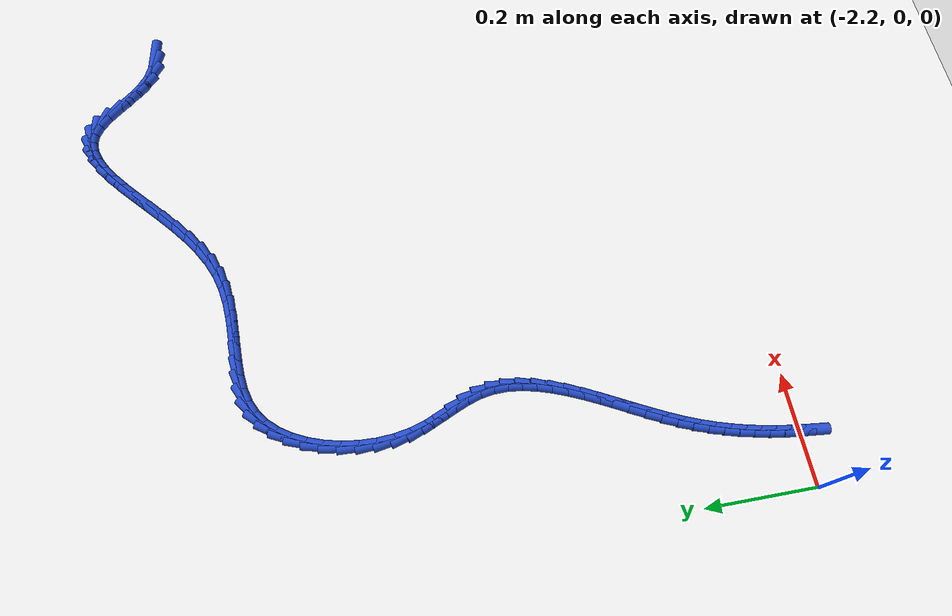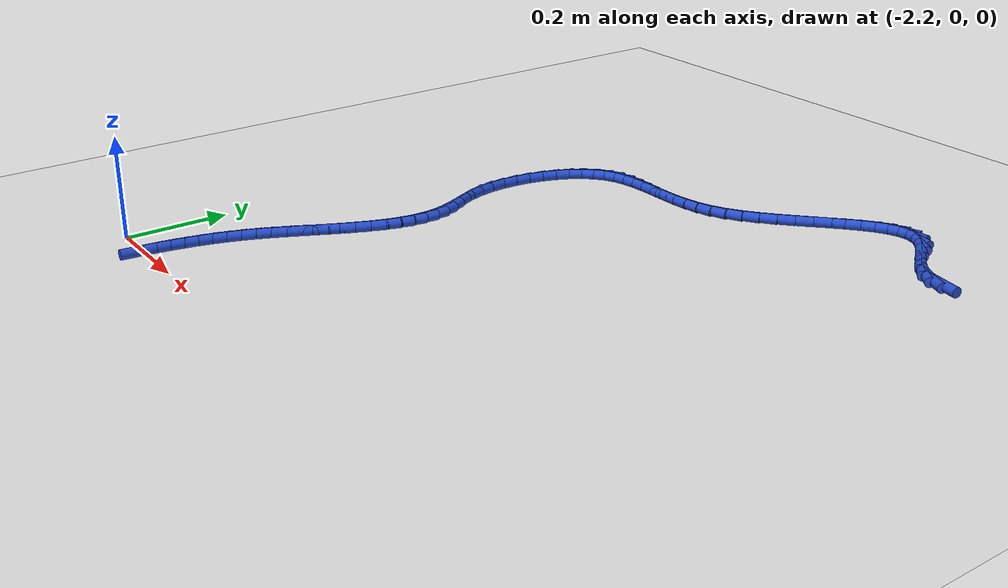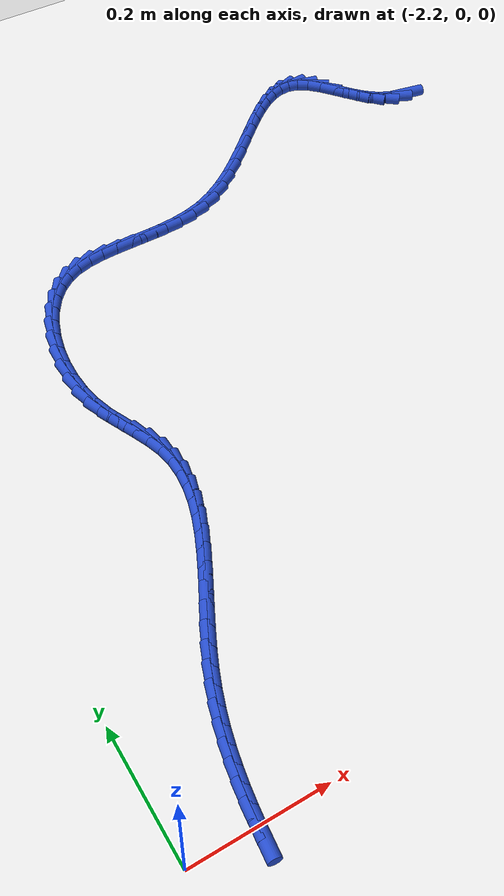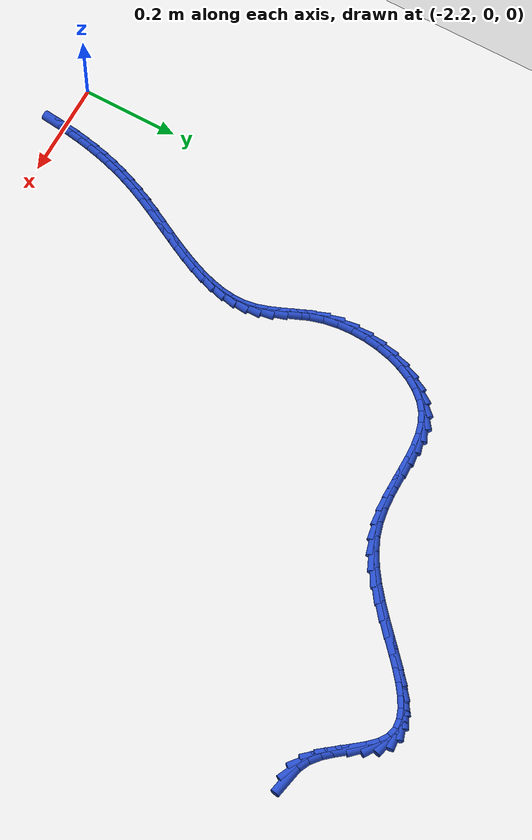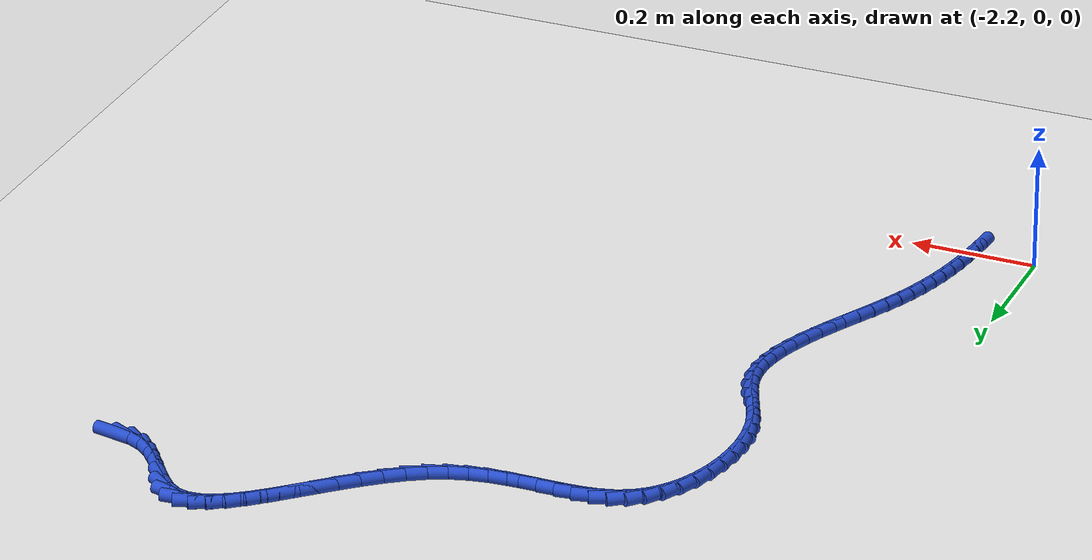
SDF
<sdf version="1.6">
 <world name="default">
  <model name="ground_plane">
   <static>1</static>
   <link name="link">
    <collision name="collision">
     <geometry><plane><normal>0 0 1</normal><size>100 100</size></plane></geometry>
     <surface><friction><ode><mu>100</mu><mu2>50</mu2></ode></friction></surface>
    </collision>
    <visual name="visual">
     <cast_shadows>0</cast_shadows>
     <geometry><plane><normal>0 0 1</normal><size>100 100</size></plane></geometry>
     <material>
      <script><uri>file://media/materials/scripts/gazebo.material</uri><name>Gazebo/WhiteGlow</name></script>
     </material>
    </visual>
   </link>
  </model>
  <model name="line">
   <link name="link_65">
    <pose>-1.1472537132720921 1.0437075421269983 0.01 0 1.57 -0.1908297829703688</pose>
    <collision name="collision">
     <geometry><cylinder><radius>0.01</radius><length>0.08</length></cylinder></geometry>
    </collision>
    <visual name="visual">
     <material>
      <script><name>Gazebo/Blue</name><uri>file://media/materials/scripts/gazebo.material</uri></script>
     </material>
     <geometry><cylinder><radius>0.01</radius><length>0.08</length></cylinder></geometry>
    </visual>
   </link>
   <link name="link_66">
    <pose>-1.1709579289009193 1.048286733149616 0.01 0 1.57 -0.4315236645023768</pose>
    <collision name="collision">
     <geometry><cylinder><radius>0.01</radius><length>0.08</length></cylinder></geometry>
    </collision>
    <visual name="visual">
     <material>
      <script><name>Gazebo/Blue</name><uri>file://media/materials/scripts/gazebo.material</uri></script>
     </material>
     <geometry><cylinder><radius>0.01</radius><length>0.08</length></cylinder></geometry>
    </visual>
   </link>
   <link name="link_67">
    <pose>-1.193125170385603 1.0584940042814004 0.01 0 1.57 -0.6776256047833608</pose>
    <collision name="collision">
     <geometry><cylinder><radius>0.01</radius><length>0.08</length></cylinder></geometry>
    </collision>
    <visual name="visual">
     <material>
      <script><name>Gazebo/Blue</name><uri>file://media/materials/scripts/gazebo.material</uri></script>
     </material>
     <geometry><cylinder><radius>0.01</radius><length>0.08</length></cylinder></geometry>
    </visual>
   </link>
   <link name="link_68">
    <pose>-1.213614786763767 1.0749828550991414 0.01 0 1.57 -0.8388271453179427</pose>
    <collision name="collision">
     <geometry><cylinder><radius>0.01</radius><length>0.08</length></cylinder></geometry>
    </collision>
    <visual name="visual">
     <material>
      <script><name>Gazebo/Blue</name><uri>file://media/materials/scripts/gazebo.material</uri></script>
     </material>
     <geometry><cylinder><radius>0.01</radius><length>0.08</length></cylinder></geometry>
    </visual>
   </link>
   <link name="link_69">
    <pose>-1.2326859800498944 1.0962091534207812 0.01 0 1.57 -0.9049081927433106</pose>
    <collision name="collision">
     <geometry><cylinder><radius>0.01</radius><length>0.08</length></cylinder></geometry>
    </collision>
    <visual name="visual">
     <material>
      <script><name>Gazebo/Blue</name><uri>file://media/materials/scripts/gazebo.material</uri></script>
     </material>
     <geometry><cylinder><radius>0.01</radius><length>0.08</length></cylinder></geometry>
    </visual>
   </link>
   <link name="link_70">
    <pose>-1.2508370928147665 1.1193144267647905 0.01 0 1.57 -0.8947844522712578</pose>
    <collision name="collision">
     <geometry><cylinder><radius>0.01</radius><length>0.08</length></cylinder></geometry>
    </collision>
    <visual name="visual">
     <material>
      <script><name>Gazebo/Blue</name><uri>file://media/materials/scripts/gazebo.material</uri></script>
     </material>
     <geometry><cylinder><radius>0.01</radius><length>0.08</length></cylinder></geometry>
    </visual>
   </link>
   <link name="link_71">
    <pose>-1.2685696867738616 1.1414225099099846 0.01 0 1.57 -0.7970227886524505</pose>
    <collision name="collision">
     <geometry><cylinder><radius>0.01</radius><length>0.08</length></cylinder></geometry>
    </collision>
    <visual name="visual">
     <material>
      <script><name>Gazebo/Blue</name><uri>file://media/materials/scripts/gazebo.material</uri></script>
     </material>
     <geometry><cylinder><radius>0.01</radius><length>0.08</length></cylinder></geometry>
    </visual>
   </link>
   <link name="link_72">
    <pose>-1.286385323642658 1.1596572376351786 0.01 0 1.57 -0.5652407297171366</pose>
    <collision name="collision">
     <geometry><cylinder><radius>0.01</radius><length>0.08</length></cylinder></geometry>
    </collision>
    <visual name="visual">
     <material>
      <script><name>Gazebo/Blue</name><uri>file://media/materials/scripts/gazebo.material</uri></script>
     </material>
     <geometry><cylinder><radius>0.01</radius><length>0.08</length></cylinder></geometry>
    </visual>
   </link>
   <link name="link_73">
    <pose>-1.3047621979662785 1.1713132176513337 0.01 0 1.57 -0.2298564299106198</pose>
    <collision name="collision">
     <geometry><cylinder><radius>0.01</radius><length>0.08</length></cylinder></geometry>
    </collision>
    <visual name="visual">
     <material>
      <script><name>Gazebo/Blue</name><uri>file://media/materials/scripts/gazebo.material</uri></script>
     </material>
     <geometry><cylinder><radius>0.01</radius><length>0.08</length></cylinder></geometry>
    </visual>
   </link>
   <link name="link_74">
    <pose>-1.3238906029905462 1.1757891099917746 0.01 0 1.57 0.09477472024817211</pose>
    <collision name="collision">
     <geometry><cylinder><radius>0.01</radius><length>0.08</length></cylinder></geometry>
    </collision>
    <visual name="visual">
     <material>
      <script><name>Gazebo/Blue</name><uri>file://media/materials/scripts/gazebo.material</uri></script>
     </material>
     <geometry><cylinder><radius>0.01</radius><length>0.08</length></cylinder></geometry>
    </visual>
   </link>
   <link name="link_75">
    <pose>-1.3437670659965997 1.173899663220778 0.01 0 1.57 0.3451853252124385</pose>
    <collision name="collision">
     <geometry><cylinder><radius>0.01</radius><length>0.08</length></cylinder></geometry>
    </collision>
    <visual name="visual">
     <material>
      <script><name>Gazebo/Blue</name><uri>file://media/materials/scripts/gazebo.material</uri></script>
     </material>
     <geometry><cylinder><radius>0.01</radius><length>0.08</length></cylinder></geometry>
    </visual>
   </link>
   <link name="link_76">
    <pose>-1.3643845044546203 1.1664860072741057 0.01 0 1.57 0.5154656002704555</pose>
    <collision name="collision">
     <geometry><cylinder><radius>0.01</radius><length>0.08</length></cylinder></geometry>
    </collision>
    <visual name="visual">
     <material>
      <script><name>Gazebo/Blue</name><uri>file://media/materials/scripts/gazebo.material</uri></script>
     </material>
     <geometry><cylinder><radius>0.01</radius><length>0.08</length></cylinder></geometry>
    </visual>
   </link>
   <link name="link_77">
    <pose>-1.3857358358347893 1.154389272087518 0.01 0 1.57 0.6252873552584111</pose>
    <collision name="collision">
     <geometry><cylinder><radius>0.01</radius><length>0.08</length></cylinder></geometry>
    </collision>
    <visual name="visual">
     <material>
      <script><name>Gazebo/Blue</name><uri>file://media/materials/scripts/gazebo.material</uri></script>
     </material>
     <geometry><cylinder><radius>0.01</radius><length>0.08</length></cylinder></geometry>
    </visual>
   </link>
   <link name="link_78">
    <pose>-1.4078139776072884 1.1384505875967763 0.01 0 1.57 0.6932162546906893</pose>
    <collision name="collision">
     <geometry><cylinder><radius>0.01</radius><length>0.08</length></cylinder></geometry>
    </collision>
    <visual name="visual">
     <material>
      <script><name>Gazebo/Blue</name><uri>file://media/materials/scripts/gazebo.material</uri></script>
     </material>
     <geometry><cylinder><radius>0.01</radius><length>0.08</length></cylinder></geometry>
    </visual>
   </link>
   <link name="link_79">
    <pose>-1.4306118472422997 1.1195110837376416 0.01 0 1.57 0.7313969738314896</pose>
    <collision name="collision">
     <geometry><cylinder><radius>0.01</radius><length>0.08</length></cylinder></geometry>
    </collision>
    <visual name="visual">
     <material>
      <script><name>Gazebo/Blue</name><uri>file://media/materials/scripts/gazebo.material</uri></script>
     </material>
     <geometry><cylinder><radius>0.01</radius><length>0.08</length></cylinder></geometry>
    </visual>
   </link>
   <link name="link_80">
    <pose>-1.4541223622100035 1.0984118904458755 0.01 0 1.57 0.7468545923990845</pose>
    <collision name="collision">
     <geometry><cylinder><radius>0.01</radius><length>0.08</length></cylinder></geometry>
    </collision>
    <visual name="visual">
     <material>
      <script><name>Gazebo/Blue</name><uri>file://media/materials/scripts/gazebo.material</uri></script>
     </material>
     <geometry><cylinder><radius>0.01</radius><length>0.08</length></cylinder></geometry>
    </visual>
   </link>
   <link name="link_81">
    <pose>-1.4783384399805828 1.0759941376572388 0.01 0 1.57 0.7431855078309851</pose>
    <collision name="collision">
     <geometry><cylinder><radius>0.01</radius><length>0.08</length></cylinder></geometry>
    </collision>
    <visual name="visual">
     <material>
      <script><name>Gazebo/Blue</name><uri>file://media/materials/scripts/gazebo.material</uri></script>
     </material>
     <geometry><cylinder><radius>0.01</radius><length>0.08</length></cylinder></geometry>
    </visual>
   </link>
   <link name="link_82">
    <pose>-1.503252998024218 1.0530989553074925 0.01 0 1.57 0.7216161324926176</pose>
    <collision name="collision">
     <geometry><cylinder><radius>0.01</radius><length>0.08</length></cylinder></geometry>
    </collision>
    <visual name="visual">
     <material>
      <script><name>Gazebo/Blue</name><uri>file://media/materials/scripts/gazebo.material</uri></script>
     </material>
     <geometry><cylinder><radius>0.01</radius><length>0.08</length></cylinder></geometry>
    </visual>
   </link>
   <link name="link_83">
    <pose>-1.5288589538110913 1.0305674733323977 0.01 0 1.57 0.6815326267145881</pose>
    <collision name="collision">
     <geometry><cylinder><radius>0.01</radius><length>0.08</length></cylinder></geometry>
    </collision>
    <visual name="visual">
     <material>
      <script><name>Gazebo/Blue</name><uri>file://media/materials/scripts/gazebo.material</uri></script>
     </material>
     <geometry><cylinder><radius>0.01</radius><length>0.08</length></cylinder></geometry>
    </visual>
   </link>
   <link name="link_84">
    <pose>-1.5551492248113843 1.009240821667716 0.01 0 1.57 0.620695952408016</pose>
    <collision name="collision">
     <geometry><cylinder><radius>0.01</radius><length>0.08</length></cylinder></geometry>
    </collision>
    <visual name="visual">
     <material>
      <script><name>Gazebo/Blue</name><uri>file://media/materials/scripts/gazebo.material</uri></script>
     </material>
     <geometry><cylinder><radius>0.01</radius><length>0.08</length></cylinder></geometry>
    </visual>
   </link>
   <link name="link_85">
    <pose>-1.582116728495278 0.989960130249208 0.01 0 1.57 0.5353762596540044</pose>
    <collision name="collision">
     <geometry><cylinder><radius>0.01</radius><length>0.08</length></cylinder></geometry>
    </collision>
    <visual name="visual">
     <material>
      <script><name>Gazebo/Blue</name><uri>file://media/materials/scripts/gazebo.material</uri></script>
     </material>
     <geometry><cylinder><radius>0.01</radius><length>0.08</length></cylinder></geometry>
    </visual>
   </link>
   <link name="link_86">
    <pose>-1.6097543823329539 0.973566529012635 0.01 0 1.57 0.4208069963148313</pose>
    <collision name="collision">
     <geometry><cylinder><radius>0.01</radius><length>0.08</length></cylinder></geometry>
    </collision>
    <visual name="visual">
     <material>
      <script><name>Gazebo/Blue</name><uri>file://media/materials/scripts/gazebo.material</uri></script>
     </material>
     <geometry><cylinder><radius>0.01</radius><length>0.08</length></cylinder></geometry>
    </visual>
   </link>
   <link name="link_87">
    <pose>-1.6380550531950555 0.9609008233237392 0.01 0 1.57 0.2857663705802092</pose>
    <collision name="collision">
     <geometry><cylinder><radius>0.01</radius><length>0.08</length></cylinder></geometry>
    </collision>
    <visual name="visual">
     <material>
      <script><name>Gazebo/Blue</name><uri>file://media/materials/scripts/gazebo.material</uri></script>
     </material>
     <geometry><cylinder><radius>0.01</radius><length>0.08</length></cylinder></geometry>
    </visual>
   </link>
   <link name="link_88">
    <pose>-1.6669503910477905 0.9524111435831305 0.01 0 1.57 0.17003657340223532</pose>
    <collision name="collision">
     <geometry><cylinder><radius>0.01</radius><length>0.08</length></cylinder></geometry>
    </collision>
    <visual name="visual">
     <material>
      <script><name>Gazebo/Blue</name><uri>file://media/materials/scripts/gazebo.material</uri></script>
     </material>
     <geometry><cylinder><radius>0.01</radius><length>0.08</length></cylinder></geometry>
    </visual>
   </link>
   <link name="link_89">
    <pose>-1.69619196998821 0.9473905260831434 0.01 0 1.57 0.08407783047811372</pose>
    <collision name="collision">
     <geometry><cylinder><radius>0.01</radius><length>0.08</length></cylinder></geometry>
    </collision>
    <visual name="visual">
     <material>
      <script><name>Gazebo/Blue</name><uri>file://media/materials/scripts/gazebo.material</uri></script>
     </material>
     <geometry><cylinder><radius>0.01</radius><length>0.08</length></cylinder></geometry>
    </visual>
   </link>
   <link name="link_90">
    <pose>-1.7254984189518419 0.9449206808448601 0.01 0 1.57 0.028777356177072312</pose>
    <collision name="collision">
     <geometry><cylinder><radius>0.01</radius><length>0.08</length></cylinder></geometry>
    </collision>
    <visual name="visual">
     <material>
      <script><name>Gazebo/Blue</name><uri>file://media/materials/scripts/gazebo.material</uri></script>
     </material>
     <geometry><cylinder><radius>0.01</radius><length>0.08</length></cylinder></geometry>
    </visual>
   </link>
   <link name="link_91">
    <pose>-1.7545883668742155 0.944083317889363 0.01 0 1.57 0.004307833069118403</pose>
    <collision name="collision">
     <geometry><cylinder><radius>0.01</radius><length>0.08</length></cylinder></geometry>
    </collision>
    <visual name="visual">
     <material>
      <script><name>Gazebo/Blue</name><uri>file://media/materials/scripts/gazebo.material</uri></script>
     </material>
     <geometry><cylinder><radius>0.01</radius><length>0.08</length></cylinder></geometry>
    </visual>
   </link>
   <link name="link_92">
    <pose>-1.7831804426908606 0.9439601472377342 0.01 0 1.57 0.011766267312846886</pose>
    <collision name="collision">
     <geometry><cylinder><radius>0.01</radius><length>0.08</length></cylinder></geometry>
    </collision>
    <visual name="visual">
     <material>
      <script><name>Gazebo/Blue</name><uri>file://media/materials/scripts/gazebo.material</uri></script>
     </material>
     <geometry><cylinder><radius>0.01</radius><length>0.08</length></cylinder></geometry>
    </visual>
   </link>
   <link name="link_93">
    <pose>-1.8109932753373057 0.9436328789110564 0.01 0 1.57 0.05413530742633654</pose>
    <collision name="collision">
     <geometry><cylinder><radius>0.01</radius><length>0.08</length></cylinder></geometry>
    </collision>
    <visual name="visual">
     <material>
      <script><name>Gazebo/Blue</name><uri>file://media/materials/scripts/gazebo.material</uri></script>
     </material>
     <geometry><cylinder><radius>0.01</radius><length>0.08</length></cylinder></geometry>
    </visual>
   </link>
   <link name="link_94">
    <pose>-1.8377454937490791 0.9421832229304112 0.01 0 1.57 0.13650513938641123</pose>
    <collision name="collision">
     <geometry><cylinder><radius>0.01</radius><length>0.08</length></cylinder></geometry>
    </collision>
    <visual name="visual">
     <material>
      <script><name>Gazebo/Blue</name><uri>file://media/materials/scripts/gazebo.material</uri></script>
     </material>
     <geometry><cylinder><radius>0.01</radius><length>0.08</length></cylinder></geometry>
    </visual>
   </link>
   <link name="link_95">
    <pose>-1.8631557268617092 0.9386928893168808 0.01 0 1.57 0.2647633972727457</pose>
    <collision name="collision">
     <geometry><cylinder><radius>0.01</radius><length>0.08</length></cylinder></geometry>
    </collision>
    <visual name="visual">
     <material>
      <script><name>Gazebo/Blue</name><uri>file://media/materials/scripts/gazebo.material</uri></script>
     </material>
     <geometry><cylinder><radius>0.01</radius><length>0.08</length></cylinder></geometry>
    </visual>
   </link>
   <link name="link_96">
    <pose>-1.8869426036107262 0.9322435880915477 0.01 0 1.57 0.4409299020304644</pose>
    <collision name="collision">
     <geometry><cylinder><radius>0.01</radius><length>0.08</length></cylinder></geometry>
    </collision>
    <visual name="visual">
     <material>
      <script><name>Gazebo/Blue</name><uri>file://media/materials/scripts/gazebo.material</uri></script>
     </material>
     <geometry><cylinder><radius>0.01</radius><length>0.08</length></cylinder></geometry>
    </visual>
   </link>
   <link name="link_97">
    <pose>-1.908824752931658 0.9219170292754941 0.01 0 1.57 0.6474868407774784</pose>
    <collision name="collision">
     <geometry><cylinder><radius>0.01</radius><length>0.08</length></cylinder></geometry>
    </collision>
    <visual name="visual">
     <material>
      <script><name>Gazebo/Blue</name><uri>file://media/materials/scripts/gazebo.material</uri></script>
     </material>
     <geometry><cylinder><radius>0.01</radius><length>0.08</length></cylinder></geometry>
    </visual>
   </link>
   <link name="link_98">
    <pose>-1.9285435800449764 0.9070047370282238 0.01 0 1.57 0.8332921849259431</pose>
    <collision name="collision">
     <geometry><cylinder><radius>0.01</radius><length>0.08</length></cylinder></geometry>
    </collision>
    <visual name="visual">
     <material>
      <script><name>Gazebo/Blue</name><uri>file://media/materials/scripts/gazebo.material</uri></script>
     </material>
     <geometry><cylinder><radius>0.01</radius><length>0.08</length></cylinder></geometry>
    </visual>
   </link>
   <link name="link_99">
    <pose>-1.945953750277182 0.8878415826408238 0.01 0 1.57 0.9882589610673187</pose>
    <collision name="collision">
     <geometry><cylinder><radius>0.01</radius><length>0.08</length></cylinder></geometry>
    </collision>
    <visual name="visual">
     <material>
      <script><name>Gazebo/Blue</name><uri>file://media/materials/scripts/gazebo.material</uri></script>
     </material>
     <geometry><cylinder><radius>0.01</radius><length>0.08</length></cylinder></geometry>
    </visual>
   </link>
   <link name="link_100">
    <pose>-1.9609450670258448 0.8650861277746816 0.01 0 1.57 1.1191239236320694</pose>
    <collision name="collision">
     <geometry><cylinder><radius>0.01</radius><length>0.08</length></cylinder></geometry>
    </collision>
    <visual name="visual">
     <material>
      <script><name>Gazebo/Blue</name><uri>file://media/materials/scripts/gazebo.material</uri></script>
     </material>
     <geometry><cylinder><radius>0.01</radius><length>0.08</length></cylinder></geometry>
    </visual>
   </link>
   <link name="link_101">
    <pose>-1.9734073444887967 0.8393970335827272 0.01 0 1.57 1.2329869658990569</pose>
    <collision name="collision">
     <geometry><cylinder><radius>0.01</radius><length>0.08</length></cylinder></geometry>
    </collision>
    <visual name="visual">
     <material>
      <script><name>Gazebo/Blue</name><uri>file://media/materials/scripts/gazebo.material</uri></script>
     </material>
     <geometry><cylinder><radius>0.01</radius><length>0.08</length></cylinder></geometry>
    </visual>
   </link>
   <link name="link_102">
    <pose>-1.9832303968638703 0.8114329612178912 0.01 0 1.57 1.3360714723488312</pose>
    <collision name="collision">
     <geometry><cylinder><radius>0.01</radius><length>0.08</length></cylinder></geometry>
    </collision>
    <visual name="visual">
     <material>
      <script><name>Gazebo/Blue</name><uri>file://media/materials/scripts/gazebo.material</uri></script>
     </material>
     <geometry><cylinder><radius>0.01</radius><length>0.08</length></cylinder></geometry>
    </visual>
   </link>
   <link name="link_103">
    <pose>-1.9903040383488972 0.7818525718331032 0.01 0 1.57 1.4336690771845864</pose>
    <collision name="collision">
     <geometry><cylinder><radius>0.01</radius><length>0.08</length></cylinder></geometry>
    </collision>
    <visual name="visual">
     <material>
      <script><name>Gazebo/Blue</name><uri>file://media/materials/scripts/gazebo.material</uri></script>
     </material>
     <geometry><cylinder><radius>0.01</radius><length>0.08</length></cylinder></geometry>
    </visual>
   </link>
   <link name="link_104">
    <pose>-1.9945180831417109 0.7513145265812942 0.01 0 1.57 1.5304686007388768</pose>
    <collision name="collision">
     <geometry><cylinder><radius>0.01</radius><length>0.08</length></cylinder></geometry>
    </collision>
    <visual name="visual">
     <material>
      <script><name>Gazebo/Blue</name><uri>file://media/materials/scripts/gazebo.material</uri></script>
     </material>
     <geometry><cylinder><radius>0.01</radius><length>0.08</length></cylinder></geometry>
    </visual>
   </link>
   <link name="link_105">
    <pose>-1.9957623454401423 0.7204774866153938 0.01 0 1.57 -1.5106372413034475</pose>
    <collision name="collision">
     <geometry><cylinder><radius>0.01</radius><length>0.08</length></cylinder></geometry>
    </collision>
    <visual name="visual">
     <material>
      <script><name>Gazebo/Blue</name><uri>file://media/materials/scripts/gazebo.material</uri></script>
     </material>
     <geometry><cylinder><radius>0.01</radius><length>0.08</length></cylinder></geometry>
    </visual>
   </link>
   <link name="link_106">
    <pose>-1.9939266394420245 0.6900001130883325 0.01 0 1.57 -1.4018182362252027</pose>
    <collision name="collision">
     <geometry><cylinder><radius>0.01</radius><length>0.08</length></cylinder></geometry>
    </collision>
    <visual name="visual">
     <material>
      <script><name>Gazebo/Blue</name><uri>file://media/materials/scripts/gazebo.material</uri></script>
     </material>
     <geometry><cylinder><radius>0.01</radius><length>0.08</length></cylinder></geometry>
    </visual>
   </link>
   <link name="link_107">
    <pose>-1.9889007793451896 0.6605410671530411 0.01 0 1.57 -1.2837362882162096</pose>
    <collision name="collision">
     <geometry><cylinder><radius>0.01</radius><length>0.08</length></cylinder></geometry>
    </collision>
    <visual name="visual">
     <material>
      <script><name>Gazebo/Blue</name><uri>file://media/materials/scripts/gazebo.material</uri></script>
     </material>
     <geometry><cylinder><radius>0.01</radius><length>0.08</length></cylinder></geometry>
    </visual>
   </link>
   <link name="link_108">
    <pose>-1.980678288383823 0.6326884042666217 0.01 0 1.57 -1.193835470275969</pose>
    <collision name="collision">
     <geometry><cylinder><radius>0.01</radius><length>0.08</length></cylinder></geometry>
    </collision>
    <visual name="visual">
     <material>
      <script><name>Gazebo/Blue</name><uri>file://media/materials/scripts/gazebo.material</uri></script>
     </material>
     <geometry><cylinder><radius>0.01</radius><length>0.08</length></cylinder></geometry>
    </visual>
   </link>
   <link name="link_109">
    <pose>-1.9702512411352475 0.6063503605099603 0.01 0 1.57 -1.157883643581457</pose>
    <collision name="collision">
     <geometry><cylinder><radius>0.01</radius><length>0.08</length></cylinder></geometry>
    </collision>
    <visual name="visual">
     <material>
      <script><name>Gazebo/Blue</name><uri>file://media/materials/scripts/gazebo.material</uri></script>
     </material>
     <geometry><cylinder><radius>0.01</radius><length>0.08</length></cylinder></geometry>
    </visual>
   </link>
   <link name="link_110">
    <pose>-1.9591695527752158 0.5810553909439086 0.01 0 1.57 -1.180245279655527</pose>
    <collision name="collision">
     <geometry><cylinder><radius>0.01</radius><length>0.08</length></cylinder></geometry>
    </collision>
    <visual name="visual">
     <material>
      <script><name>Gazebo/Blue</name><uri>file://media/materials/scripts/gazebo.material</uri></script>
     </material>
     <geometry><cylinder><radius>0.01</radius><length>0.08</length></cylinder></geometry>
    </visual>
   </link>
   <link name="link_111">
    <pose>-1.9489892256189172 0.5563278064705186 0.01 0 1.57 -1.2670150038650043</pose>
    <collision name="collision">
     <geometry><cylinder><radius>0.01</radius><length>0.08</length></cylinder></geometry>
    </collision>
    <visual name="visual">
     <material>
      <script><name>Gazebo/Blue</name><uri>file://media/materials/scripts/gazebo.material</uri></script>
     </material>
     <geometry><cylinder><radius>0.01</radius><length>0.08</length></cylinder></geometry>
    </visual>
   </link>
   <link name="link_112">
    <pose>-1.941266261981541 0.5316919179918431 0.01 0 1.57 -1.412413865291405</pose>
    <collision name="collision">
     <geometry><cylinder><radius>0.01</radius><length>0.08</length></cylinder></geometry>
    </collision>
    <visual name="visual">
     <material>
      <script><name>Gazebo/Blue</name><uri>file://media/materials/scripts/gazebo.material</uri></script>
     </material>
     <geometry><cylinder><radius>0.01</radius><length>0.08</length></cylinder></geometry>
    </visual>
   </link>
   <link name="link_113">
    <pose>-1.937281760881786 0.5067451648220392 0.01 0 1.57 -1.5595115037049854</pose>
    <collision name="collision">
     <geometry><cylinder><radius>0.01</radius><length>0.08</length></cylinder></geometry>
    </collision>
    <visual name="visual">
     <material>
      <script><name>Gazebo/Blue</name><uri>file://media/materials/scripts/gazebo.material</uri></script>
     </material>
     <geometry><cylinder><radius>0.01</radius><length>0.08</length></cylinder></geometry>
    </visual>
   </link>
   <link name="link_114">
    <pose>-1.9369961427702738 0.4814363066407028 0.01 0 1.57 1.4550806745738276</pose>
    <collision name="collision">
     <geometry><cylinder><radius>0.01</radius><length>0.08</length></cylinder></geometry>
    </collision>
    <visual name="visual">
     <material>
      <script><name>Gazebo/Blue</name><uri>file://media/materials/scripts/gazebo.material</uri></script>
     </material>
     <geometry><cylinder><radius>0.01</radius><length>0.08</length></cylinder></geometry>
    </visual>
   </link>
   <link name="link_115">
    <pose>-1.939973712946892 0.45581947571609494 0.01 0 1.57 1.350067233539649</pose>
    <collision name="collision">
     <geometry><cylinder><radius>0.01</radius><length>0.08</length></cylinder></geometry>
    </collision>
    <visual name="visual">
     <material>
      <script><name>Gazebo/Blue</name><uri>file://media/materials/scripts/gazebo.material</uri></script>
     </material>
     <geometry><cylinder><radius>0.01</radius><length>0.08</length></cylinder></geometry>
    </visual>
   </link>
   <link name="link_116">
    <pose>-1.9457787016153008 0.42994882429320297 0.01 0 1.57 1.2661769370390843</pose>
    <collision name="collision">
     <geometry><cylinder><radius>0.01</radius><length>0.08</length></cylinder></geometry>
    </collision>
    <visual name="visual">
     <material>
      <script><name>Gazebo/Blue</name><uri>file://media/materials/scripts/gazebo.material</uri></script>
     </material>
     <geometry><cylinder><radius>0.01</radius><length>0.08</length></cylinder></geometry>
    </visual>
   </link>
   <link name="link_117">
    <pose>-1.9539753389791596 0.4038785046170146 0.01 0 1.57 1.2013150256525358</pose>
    <collision name="collision">
     <geometry><cylinder><radius>0.01</radius><length>0.08</length></cylinder></geometry>
    </collision>
    <visual name="visual">
     <material>
      <script><name>Gazebo/Blue</name><uri>file://media/materials/scripts/gazebo.material</uri></script>
     </material>
     <geometry><cylinder><radius>0.01</radius><length>0.08</length></cylinder></geometry>
    </visual>
   </link>
   <link name="link_118">
    <pose>-1.964127855242127 0.3776626689325167 0.01 0 1.57 1.1531899764156408</pose>
    <collision name="collision">
     <geometry><cylinder><radius>0.01</radius><length>0.08</length></cylinder></geometry>
    </collision>
    <visual name="visual">
     <material>
      <script><name>Gazebo/Blue</name><uri>file://media/materials/scripts/gazebo.material</uri></script>
     </material>
     <geometry><cylinder><radius>0.01</radius><length>0.08</length></cylinder></geometry>
    </visual>
   </link>
   <link name="link_119">
    <pose>-1.9758004806078633 0.3513554694846967 0.01 0 1.57 1.1198376484765724</pose>
    <collision name="collision">
     <geometry><cylinder><radius>0.01</radius><length>0.08</length></cylinder></geometry>
    </collision>
    <visual name="visual">
     <material>
      <script><name>Gazebo/Blue</name><uri>file://media/materials/scripts/gazebo.material</uri></script>
     </material>
     <geometry><cylinder><radius>0.01</radius><length>0.08</length></cylinder></geometry>
    </visual>
   </link>
   <link name="link_120">
    <pose>-1.9885574452800283 0.3250110585185423 0.01 0 1.57 1.0998283119228927</pose>
    <collision name="collision">
     <geometry><cylinder><radius>0.01</radius><length>0.08</length></cylinder></geometry>
    </collision>
    <visual name="visual">
     <material>
      <script><name>Gazebo/Blue</name><uri>file://media/materials/scripts/gazebo.material</uri></script>
     </material>
     <geometry><cylinder><radius>0.01</radius><length>0.08</length></cylinder></geometry>
    </visual>
   </link>
   <link name="link_121">
    <pose>-2.0019629794622804 0.29868358827904057 0.01 0 1.57 1.0923263588154686</pose>
    <collision name="collision">
     <geometry><cylinder><radius>0.01</radius><length>0.08</length></cylinder></geometry>
    </collision>
    <visual name="visual">
     <material>
      <script><name>Gazebo/Blue</name><uri>file://media/materials/scripts/gazebo.material</uri></script>
     </material>
     <geometry><cylinder><radius>0.01</radius><length>0.08</length></cylinder></geometry>
    </visual>
   </link>
   <link name="link_122">
    <pose>-2.0155813133582794 0.2724272110111788 0.01 0 1.57 1.097103070263706</pose>
    <collision name="collision">
     <geometry><cylinder><radius>0.01</radius><length>0.08</length></cylinder></geometry>
    </collision>
    <visual name="visual">
     <material>
      <script><name>Gazebo/Blue</name><uri>file://media/materials/scripts/gazebo.material</uri></script>
     </material>
     <geometry><cylinder><radius>0.01</radius><length>0.08</length></cylinder></geometry>
    </visual>
   </link>
   <link name="link_123">
    <pose>-2.0289766771716846 0.246296078959945 0.01 0 1.57 1.1145509036273413</pose>
    <collision name="collision">
     <geometry><cylinder><radius>0.01</radius><length>0.08</length></cylinder></geometry>
    </collision>
    <visual name="visual">
     <material>
      <script><name>Gazebo/Blue</name><uri>file://media/materials/scripts/gazebo.material</uri></script>
     </material>
     <geometry><cylinder><radius>0.01</radius><length>0.08</length></cylinder></geometry>
    </visual>
   </link>
   <link name="link_124">
    <pose>-2.041713301106156 0.22034434437032563 0.01 0 1.57 1.1457084501942536</pose>
    <collision name="collision">
     <geometry><cylinder><radius>0.01</radius><length>0.08</length></cylinder></geometry>
    </collision>
    <visual name="visual">
     <material>
      <script><name>Gazebo/Blue</name><uri>file://media/materials/scripts/gazebo.material</uri></script>
     </material>
     <geometry><cylinder><radius>0.01</radius><length>0.08</length></cylinder></geometry>
    </visual>
   </link>
   <link name="link_125">
    <pose>-2.0533556661913193 0.1946261046230143 0.01 0 1.57 1.188157151466004</pose>
    <collision name="collision">
     <geometry><cylinder><radius>0.01</radius><length>0.08</length></cylinder></geometry>
    </collision>
    <visual name="visual">
     <material>
      <script><name>Gazebo/Blue</name><uri>file://media/materials/scripts/gazebo.material</uri></script>
     </material>
     <geometry><cylinder><radius>0.01</radius><length>0.08</length></cylinder></geometry>
    </visual>
   </link>
   <link name="link_126">
    <pose>-2.063602734723217 0.16916604140529581 0.01 0 1.57 1.2317498956736372</pose>
    <collision name="collision">
     <geometry><cylinder><radius>0.01</radius><length>0.08</length></cylinder></geometry>
    </collision>
    <visual name="visual">
     <material>
      <script><name>Gazebo/Blue</name><uri>file://media/materials/scripts/gazebo.material</uri></script>
     </material>
     <geometry><cylinder><radius>0.01</radius><length>0.08</length></cylinder></geometry>
    </visual>
   </link>
   <link name="link_127">
    <pose>-2.07250928497404 0.1439110071725973 0.01 0 1.57 1.2740797860648077</pose>
    <collision name="collision">
     <geometry><cylinder><radius>0.01</radius><length>0.08</length></cylinder></geometry>
    </collision>
    <visual name="visual">
     <material>
      <script><name>Gazebo/Blue</name><uri>file://media/materials/scripts/gazebo.material</uri></script>
     </material>
     <geometry><cylinder><radius>0.01</radius><length>0.08</length></cylinder></geometry>
    </visual>
   </link>
   <link name="link_128">
    <pose>-2.080188269558306 0.11879512964430146 0.01 0 1.57 1.3144357975847394</pose>
    <collision name="collision">
     <geometry><cylinder><radius>0.01</radius><length>0.08</length></cylinder></geometry>
    </collision>
    <visual name="visual">
     <material>
      <script><name>Gazebo/Blue</name><uri>file://media/materials/scripts/gazebo.material</uri></script>
     </material>
     <geometry><cylinder><radius>0.01</radius><length>0.08</length></cylinder></geometry>
    </visual>
   </link>
   <link name="link_129">
    <pose>-2.0867526410905324 0.09375253653979089 0.01 0 1.57 1.352152596699384</pose>
    <collision name="collision">
     <geometry><cylinder><radius>0.01</radius><length>0.08</length></cylinder></geometry>
    </collision>
    <visual name="visual">
     <material>
      <script><name>Gazebo/Blue</name><uri>file://media/materials/scripts/gazebo.material</uri></script>
     </material>
     <geometry><cylinder><radius>0.01</radius><length>0.08</length></cylinder></geometry>
    </visual>
   </link>
   <link name="link_130">
    <pose>-2.0923153521852345 0.06871735557844821 0.01 0 1.57 1.3866441565274616</pose>
    <collision name="collision">
     <geometry><cylinder><radius>0.01</radius><length>0.08</length></cylinder></geometry>
    </collision>
    <visual name="visual">
     <material>
      <script><name>Gazebo/Blue</name><uri>file://media/materials/scripts/gazebo.material</uri></script>
     </material>
     <geometry><cylinder><radius>0.01</radius><length>0.08</length></cylinder></geometry>
    </visual>
   </link>
   <link name="link_131">
    <pose>-2.0969893554569294 0.04362371447965617 0.01 0 1.57 1.4174281185699795</pose>
    <collision name="collision">
     <geometry><cylinder><radius>0.01</radius><length>0.08</length></cylinder></geometry>
    </collision>
    <visual name="visual">
     <material>
      <script><name>Gazebo/Blue</name><uri>file://media/materials/scripts/gazebo.material</uri></script>
     </material>
     <geometry><cylinder><radius>0.01</radius><length>0.08</length></cylinder></geometry>
    </visual>
   </link>
   <link name="link_132">
    <pose>-2.1008876035201345 0.018405740962797356 0.01 0 1.57 1.4441392368828312</pose>
    <collision name="collision">
     <geometry><cylinder><radius>0.01</radius><length>0.08</length></cylinder></geometry>
    </collision>
    <visual name="visual">
     <material>
      <script><name>Gazebo/Blue</name><uri>file://media/materials/scripts/gazebo.material</uri></script>
     </material>
     <geometry><cylinder><radius>0.01</radius><length>0.08</length></cylinder></geometry>
    </visual>
   </link>
   <link name="link_133">
    <pose>-2.1041230489893645 -0.0070024372527455366 0.01 0 1.57 1.4665323716867258</pose>
    <collision name="collision">
     <geometry><cylinder><radius>0.01</radius><length>0.08</length></cylinder></geometry>
    </collision>
    <visual name="visual">
     <material>
      <script><name>Gazebo/Blue</name><uri>file://media/materials/scripts/gazebo.material</uri></script>
     </material>
     <geometry><cylinder><radius>0.01</radius><length>0.08</length></cylinder></geometry>
    </visual>
   </link>
  </model>
 </world>
</sdf>
